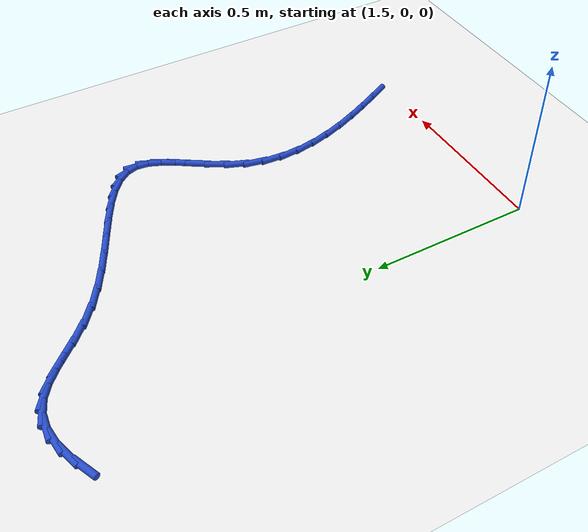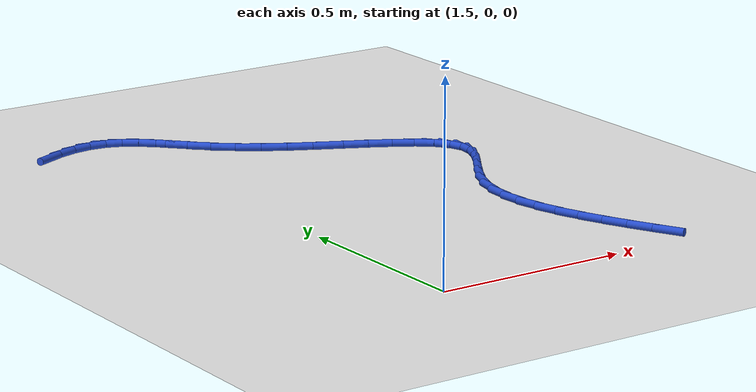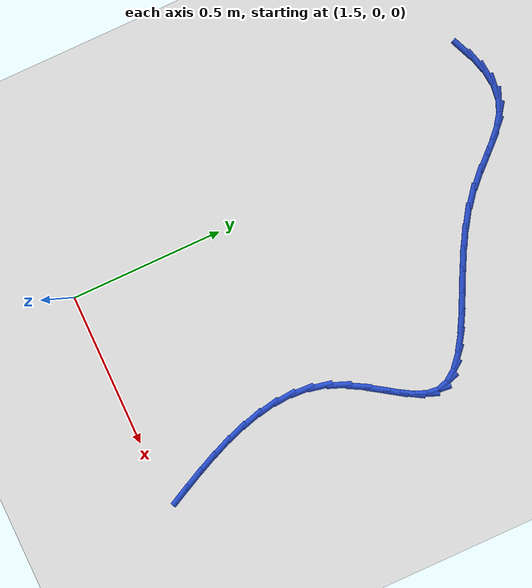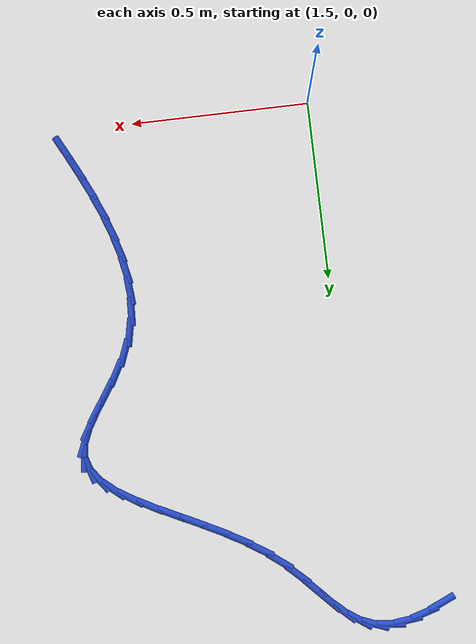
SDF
<sdf version="1.6">
 <world name="default">
  <model name="ground_plane">
   <static>1</static>
   <link name="link">
    <collision name="collision">
     <geometry><plane><normal>0 0 1</normal><size>100 100</size></plane></geometry>
     <surface><friction><ode><mu>100</mu><mu2>50</mu2></ode></friction></surface>
    </collision>
    <visual name="visual">
     <cast_shadows>0</cast_shadows>
     <geometry><plane><normal>0 0 1</normal><size>100 100</size></plane></geometry>
     <material>
      <script><uri>file://media/materials/scripts/gazebo.material</uri><name>Gazebo/WhiteGlow</name></script>
     </material>
    </visual>
   </link>
  </model>
  <model name="line">
   <link name="link_36">
    <pose>1.2952241328391052 1.4316886319928541 0.01 0 1.57 0.4160923968608848</pose>
    <collision name="collision">
     <geometry><cylinder><radius>0.01</radius><length>0.08</length></cylinder></geometry>
    </collision>
    <visual name="visual">
     <material>
      <script><name>Gazebo/Blue</name><uri>file://media/materials/scripts/gazebo.material</uri></script>
     </material>
     <geometry><cylinder><radius>0.01</radius><length>0.08</length></cylinder></geometry>
    </visual>
   </link>
   <link name="link_37">
    <pose>1.345287073493098 1.4538111351851817 0.01 0 1.57 0.28416590188307844</pose>
    <collision name="collision">
     <geometry><cylinder><radius>0.01</radius><length>0.08</length></cylinder></geometry>
    </collision>
    <visual name="visual">
     <material>
      <script><name>Gazebo/Blue</name><uri>file://media/materials/scripts/gazebo.material</uri></script>
     </material>
     <geometry><cylinder><radius>0.01</radius><length>0.08</length></cylinder></geometry>
    </visual>
   </link>
   <link name="link_38">
    <pose>1.3940921538069528 1.4680656414009376 0.01 0 1.57 0.11192194011019224</pose>
    <collision name="collision">
     <geometry><cylinder><radius>0.01</radius><length>0.08</length></cylinder></geometry>
    </collision>
    <visual name="visual">
     <material>
      <script><name>Gazebo/Blue</name><uri>file://media/materials/scripts/gazebo.material</uri></script>
     </material>
     <geometry><cylinder><radius>0.01</radius><length>0.08</length></cylinder></geometry>
    </visual>
   </link>
   <link name="link_39">
    <pose>1.441016465234059 1.473339540990185 0.01 0 1.57 -0.10807005241701684</pose>
    <collision name="collision">
     <geometry><cylinder><radius>0.01</radius><length>0.08</length></cylinder></geometry>
    </collision>
    <visual name="visual">
     <material>
      <script><name>Gazebo/Blue</name><uri>file://media/materials/scripts/gazebo.material</uri></script>
     </material>
     <geometry><cylinder><radius>0.01</radius><length>0.08</length></cylinder></geometry>
    </visual>
   </link>
   <link name="link_40">
    <pose>1.4854370992278052 1.4685202243029862 0.01 0 1.57 -0.3693830136698386</pose>
    <collision name="collision">
     <geometry><cylinder><radius>0.01</radius><length>0.08</length></cylinder></geometry>
    </collision>
    <visual name="visual">
     <material>
      <script><name>Gazebo/Blue</name><uri>file://media/materials/scripts/gazebo.material</uri></script>
     </material>
     <geometry><cylinder><radius>0.01</radius><length>0.08</length></cylinder></geometry>
    </visual>
   </link>
   <link name="link_41">
    <pose>1.526749942071172 1.4525258114870325 0.01 0 1.57 -0.6061341737355761</pose>
    <collision name="collision">
     <geometry><cylinder><radius>0.01</radius><length>0.08</length></cylinder></geometry>
    </collision>
    <visual name="visual">
     <material>
      <script><name>Gazebo/Blue</name><uri>file://media/materials/scripts/gazebo.material</uri></script>
     </material>
     <geometry><cylinder><radius>0.01</radius><length>0.08</length></cylinder></geometry>
    </visual>
   </link>
   <link name="link_42">
    <pose>1.565290306556728 1.4258103975913579 0.01 0 1.57 -0.7480756750388329</pose>
    <collision name="collision">
     <geometry><cylinder><radius>0.01</radius><length>0.08</length></cylinder></geometry>
    </collision>
    <visual name="visual">
     <material>
      <script><name>Gazebo/Blue</name><uri>file://media/materials/scripts/gazebo.material</uri></script>
     </material>
     <geometry><cylinder><radius>0.01</radius><length>0.08</length></cylinder></geometry>
    </visual>
   </link>
   <link name="link_43">
    <pose>1.602750592859781 1.3910469336771893 0.01 0 1.57 -0.8082615132169183</pose>
    <collision name="collision">
     <geometry><cylinder><radius>0.01</radius><length>0.08</length></cylinder></geometry>
    </collision>
    <visual name="visual">
     <material>
      <script><name>Gazebo/Blue</name><uri>file://media/materials/scripts/gazebo.material</uri></script>
     </material>
     <geometry><cylinder><radius>0.01</radius><length>0.08</length></cylinder></geometry>
    </visual>
   </link>
   <link name="link_44">
    <pose>1.6409290872005908 1.3510814959047266 0.01 0 1.57 -0.8049863453191419</pose>
    <collision name="collision">
     <geometry><cylinder><radius>0.01</radius><length>0.08</length></cylinder></geometry>
    </collision>
    <visual name="visual">
     <material>
      <script><name>Gazebo/Blue</name><uri>file://media/materials/scripts/gazebo.material</uri></script>
     </material>
     <geometry><cylinder><radius>0.01</radius><length>0.08</length></cylinder></geometry>
    </visual>
   </link>
   <link name="link_45">
    <pose>1.6816240757994185 1.3087601604341679 0.01 0 1.57 -0.748811799929745</pose>
    <collision name="collision">
     <geometry><cylinder><radius>0.01</radius><length>0.08</length></cylinder></geometry>
    </collision>
    <visual name="visual">
     <material>
      <script><name>Gazebo/Blue</name><uri>file://media/materials/scripts/gazebo.material</uri></script>
     </material>
     <geometry><cylinder><radius>0.01</radius><length>0.08</length></cylinder></geometry>
    </visual>
   </link>
   <link name="link_46">
    <pose>1.726633844876523 1.2669290034257132 0.01 0 1.57 -0.6507750913577891</pose>
    <collision name="collision">
     <geometry><cylinder><radius>0.01</radius><length>0.08</length></cylinder></geometry>
    </collision>
    <visual name="visual">
     <material>
      <script><name>Gazebo/Blue</name><uri>file://media/materials/scripts/gazebo.material</uri></script>
     </material>
     <geometry><cylinder><radius>0.01</radius><length>0.08</length></cylinder></geometry>
    </visual>
   </link>
   <link name="link_47">
    <pose>1.777501731184049 1.2281967630934876 0.01 0 1.57 -0.561263380317154</pose>
    <collision name="collision">
     <geometry><cylinder><radius>0.01</radius><length>0.08</length></cylinder></geometry>
    </collision>
    <visual name="visual">
     <material>
      <script><name>Gazebo/Blue</name><uri>file://media/materials/scripts/gazebo.material</uri></script>
     </material>
     <geometry><cylinder><radius>0.01</radius><length>0.08</length></cylinder></geometry>
    </visual>
   </link>
   <link name="link_48">
    <pose>1.8334564337074692 1.1930174315464142 0.01 0 1.57 -0.5008988691116714</pose>
    <collision name="collision">
     <geometry><cylinder><radius>0.01</radius><length>0.08</length></cylinder></geometry>
    </collision>
    <visual name="visual">
     <material>
      <script><name>Gazebo/Blue</name><uri>file://media/materials/scripts/gazebo.material</uri></script>
     </material>
     <geometry><cylinder><radius>0.01</radius><length>0.08</length></cylinder></geometry>
    </visual>
   </link>
   <link name="link_49">
    <pose>1.8924930694966617 1.1606966329243773 0.01 0 1.57 -0.4651940257753933</pose>
    <collision name="collision">
     <geometry><cylinder><radius>0.01</radius><length>0.08</length></cylinder></geometry>
    </collision>
    <visual name="visual">
     <material>
      <script><name>Gazebo/Blue</name><uri>file://media/materials/scripts/gazebo.material</uri></script>
     </material>
     <geometry><cylinder><radius>0.01</radius><length>0.08</length></cylinder></geometry>
    </visual>
   </link>
   <link name="link_50">
    <pose>1.9525952453586797 1.1305292762345291 0.01 0 1.57 -0.45199467438119767</pose>
    <collision name="collision">
     <geometry><cylinder><radius>0.01</radius><length>0.08</length></cylinder></geometry>
    </collision>
    <visual name="visual">
     <material>
      <script><name>Gazebo/Blue</name><uri>file://media/materials/scripts/gazebo.material</uri></script>
     </material>
     <geometry><cylinder><radius>0.01</radius><length>0.08</length></cylinder></geometry>
    </visual>
   </link>
   <link name="link_51">
    <pose>2.0117465681005764 1.1018102704840236 0.01 0 1.57 -0.4619903612679493</pose>
    <collision name="collision">
     <geometry><cylinder><radius>0.01</radius><length>0.08</length></cylinder></geometry>
    </collision>
    <visual name="visual">
     <material>
      <script><name>Gazebo/Blue</name><uri>file://media/materials/scripts/gazebo.material</uri></script>
     </material>
     <geometry><cylinder><radius>0.01</radius><length>0.08</length></cylinder></geometry>
    </visual>
   </link>
   <link name="link_52">
    <pose>2.0679306445294046 1.0738345246800127 0.01 0 1.57 -0.4994982258271587</pose>
    <collision name="collision">
     <geometry><cylinder><radius>0.01</radius><length>0.08</length></cylinder></geometry>
    </collision>
    <visual name="visual">
     <material>
      <script><name>Gazebo/Blue</name><uri>file://media/materials/scripts/gazebo.material</uri></script>
     </material>
     <geometry><cylinder><radius>0.01</radius><length>0.08</length></cylinder></geometry>
    </visual>
   </link>
   <link name="link_53">
    <pose>2.1191310814522186 1.0458969478296496 0.01 0 1.57 -0.5743724013302048</pose>
    <collision name="collision">
     <geometry><cylinder><radius>0.01</radius><length>0.08</length></cylinder></geometry>
    </collision>
    <visual name="visual">
     <material>
      <script><name>Gazebo/Blue</name><uri>file://media/materials/scripts/gazebo.material</uri></script>
     </material>
     <geometry><cylinder><radius>0.01</radius><length>0.08</length></cylinder></geometry>
    </visual>
   </link>
   <link name="link_54">
    <pose>2.163331485676073 1.0172924489400874 0.01 0 1.57 -0.7056501088922148</pose>
    <collision name="collision">
     <geometry><cylinder><radius>0.01</radius><length>0.08</length></cylinder></geometry>
    </collision>
    <visual name="visual">
     <material>
      <script><name>Gazebo/Blue</name><uri>file://media/materials/scripts/gazebo.material</uri></script>
     </material>
     <geometry><cylinder><radius>0.01</radius><length>0.08</length></cylinder></geometry>
    </visual>
   </link>
   <link name="link_55">
    <pose>2.1985154640080182 0.9873159370184784 0.01 0 1.57 -0.9250836618259491</pose>
    <collision name="collision">
     <geometry><cylinder><radius>0.01</radius><length>0.08</length></cylinder></geometry>
    </collision>
    <visual name="visual">
     <material>
      <script><name>Gazebo/Blue</name><uri>file://media/materials/scripts/gazebo.material</uri></script>
     </material>
     <geometry><cylinder><radius>0.01</radius><length>0.08</length></cylinder></geometry>
    </visual>
   </link>
   <link name="link_56">
    <pose>2.222666623255111 0.9552623210719762 0.01 0 1.57 -1.2622789611679384</pose>
    <collision name="collision">
     <geometry><cylinder><radius>0.01</radius><length>0.08</length></cylinder></geometry>
    </collision>
    <visual name="visual">
     <material>
      <script><name>Gazebo/Blue</name><uri>file://media/materials/scripts/gazebo.material</uri></script>
     </material>
     <geometry><cylinder><radius>0.01</radius><length>0.08</length></cylinder></geometry>
    </visual>
   </link>
   <link name="link_57">
    <pose>2.233768570224402 0.9204265101077328 0.01 0 1.57 1.4715385782287622</pose>
    <collision name="collision">
     <geometry><cylinder><radius>0.01</radius><length>0.08</length></cylinder></geometry>
    </collision>
    <visual name="visual">
     <material>
      <script><name>Gazebo/Blue</name><uri>file://media/materials/scripts/gazebo.material</uri></script>
     </material>
     <geometry><cylinder><radius>0.01</radius><length>0.08</length></cylinder></geometry>
    </visual>
   </link>
   <link name="link_58">
    <pose>2.229954576364178 0.8821276327210775 0.01 0 1.57 1.1761902208305475</pose>
    <collision name="collision">
     <geometry><cylinder><radius>0.01</radius><length>0.08</length></cylinder></geometry>
    </collision>
    <visual name="visual">
     <material>
      <script><name>Gazebo/Blue</name><uri>file://media/materials/scripts/gazebo.material</uri></script>
     </material>
     <geometry><cylinder><radius>0.01</radius><length>0.08</length></cylinder></geometry>
    </visual>
   </link>
   <link name="link_59">
    <pose>2.2124903897407915 0.8401917327883109 0.01 0 1.57 1.034947775338001</pose>
    <collision name="collision">
     <geometry><cylinder><radius>0.01</radius><length>0.08</length></cylinder></geometry>
    </collision>
    <visual name="visual">
     <material>
      <script><name>Gazebo/Blue</name><uri>file://media/materials/scripts/gazebo.material</uri></script>
     </material>
     <geometry><cylinder><radius>0.01</radius><length>0.08</length></cylinder></geometry>
    </visual>
   </link>
   <link name="link_60">
    <pose>2.18561121317138 0.7949253883358169 0.01 0 1.57 0.986228087763419</pose>
    <collision name="collision">
     <geometry><cylinder><radius>0.01</radius><length>0.08</length></cylinder></geometry>
    </collision>
    <visual name="visual">
     <material>
      <script><name>Gazebo/Blue</name><uri>file://media/materials/scripts/gazebo.material</uri></script>
     </material>
     <geometry><cylinder><radius>0.01</radius><length>0.08</length></cylinder></geometry>
    </visual>
   </link>
   <link name="link_61">
    <pose>2.1536692805429234 0.7466541160270029 0.01 0 1.57 1.000870492364637</pose>
    <collision name="collision">
     <geometry><cylinder><radius>0.01</radius><length>0.08</length></cylinder></geometry>
    </collision>
    <visual name="visual">
     <material>
      <script><name>Gazebo/Blue</name><uri>file://media/materials/scripts/gazebo.material</uri></script>
     </material>
     <geometry><cylinder><radius>0.01</radius><length>0.08</length></cylinder></geometry>
    </visual>
   </link>
   <link name="link_62">
    <pose>2.1210168257424034 0.6957034325252764 0.01 0 1.57 1.0723823776283112</pose>
    <collision name="collision">
     <geometry><cylinder><radius>0.01</radius><length>0.08</length></cylinder></geometry>
    </collision>
    <visual name="visual">
     <material>
      <script><name>Gazebo/Blue</name><uri>file://media/materials/scripts/gazebo.material</uri></script>
     </material>
     <geometry><cylinder><radius>0.01</radius><length>0.08</length></cylinder></geometry>
    </visual>
   </link>
   <link name="link_63">
    <pose>2.092006082656802 0.6423988544940459 0.01 0 1.57 1.2066799391715672</pose>
    <collision name="collision">
     <geometry><cylinder><radius>0.01</radius><length>0.08</length></cylinder></geometry>
    </collision>
    <visual name="visual">
     <material>
      <script><name>Gazebo/Blue</name><uri>file://media/materials/scripts/gazebo.material</uri></script>
     </material>
     <geometry><cylinder><radius>0.01</radius><length>0.08</length></cylinder></geometry>
    </visual>
   </link>
   <link name="link_64">
    <pose>2.070918149971676 0.5870658910696237 0.01 0 1.57 1.3762226947626577</pose>
    <collision name="collision">
     <geometry><cylinder><radius>0.01</radius><length>0.08</length></cylinder></geometry>
    </collision>
    <visual name="visual">
     <material>
      <script><name>Gazebo/Blue</name><uri>file://media/materials/scripts/gazebo.material</uri></script>
     </material>
     <geometry><cylinder><radius>0.01</radius><length>0.08</length></cylinder></geometry>
    </visual>
   </link>
   <link name="link_65">
    <pose>2.059678227997891 0.5300298021014986 0.01 0 1.57 1.531284122406158</pose>
    <collision name="collision">
     <geometry><cylinder><radius>0.01</radius><length>0.08</length></cylinder></geometry>
    </collision>
    <visual name="visual">
     <material>
      <script><name>Gazebo/Blue</name><uri>file://media/materials/scripts/gazebo.material</uri></script>
     </material>
     <geometry><cylinder><radius>0.01</radius><length>0.08</length></cylinder></geometry>
    </visual>
   </link>
   <link name="link_66">
    <pose>2.0573689501131995 0.47161554665603 0.01 0 1.57 -1.4779967476293356</pose>
    <collision name="collision">
     <geometry><cylinder><radius>0.01</radius><length>0.08</length></cylinder></geometry>
    </collision>
    <visual name="visual">
     <material>
      <script><name>Gazebo/Blue</name><uri>file://media/materials/scripts/gazebo.material</uri></script>
     </material>
     <geometry><cylinder><radius>0.01</radius><length>0.08</length></cylinder></geometry>
    </visual>
   </link>
   <link name="link_67">
    <pose>2.0629034035655254 0.41214806585923675 0.01 0 1.57 -1.3693768004964777</pose>
    <collision name="collision">
     <geometry><cylinder><radius>0.01</radius><length>0.08</length></cylinder></geometry>
    </collision>
    <visual name="visual">
     <material>
      <script><name>Gazebo/Blue</name><uri>file://media/materials/scripts/gazebo.material</uri></script>
     </material>
     <geometry><cylinder><radius>0.01</radius><length>0.08</length></cylinder></geometry>
    </visual>
   </link>
   <link name="link_68">
    <pose>2.075194675602793 0.3519523008371395 0.01 0 1.57 -1.2826515822460836</pose>
    <collision name="collision">
     <geometry><cylinder><radius>0.01</radius><length>0.08</length></cylinder></geometry>
    </collision>
    <visual name="visual">
     <material>
      <script><name>Gazebo/Blue</name><uri>file://media/materials/scripts/gazebo.material</uri></script>
     </material>
     <geometry><cylinder><radius>0.01</radius><length>0.08</length></cylinder></geometry>
    </visual>
   </link>
   <link name="link_69">
    <pose>2.093155853472928 0.2913531927157576 0.01 0 1.57 -1.2150618189729905</pose>
    <collision name="collision">
     <geometry><cylinder><radius>0.01</radius><length>0.08</length></cylinder></geometry>
    </collision>
    <visual name="visual">
     <material>
      <script><name>Gazebo/Blue</name><uri>file://media/materials/scripts/gazebo.material</uri></script>
     </material>
     <geometry><cylinder><radius>0.01</radius><length>0.08</length></cylinder></geometry>
    </visual>
   </link>
   <link name="link_70">
    <pose>2.1157000244238553 0.23067568262111057 0.01 0 1.57 -1.1639313400429612</pose>
    <collision name="collision">
     <geometry><cylinder><radius>0.01</radius><length>0.08</length></cylinder></geometry>
    </collision>
    <visual name="visual">
     <material>
      <script><name>Gazebo/Blue</name><uri>file://media/materials/scripts/gazebo.material</uri></script>
     </material>
     <geometry><cylinder><radius>0.01</radius><length>0.08</length></cylinder></geometry>
    </visual>
   </link>
   <link name="link_71">
    <pose>2.1417402757035 0.17024471167921768 0.01 0 1.57 -1.1271277349837023</pose>
    <collision name="collision">
     <geometry><cylinder><radius>0.01</radius><length>0.08</length></cylinder></geometry>
    </collision>
    <visual name="visual">
     <material>
      <script><name>Gazebo/Blue</name><uri>file://media/materials/scripts/gazebo.material</uri></script>
     </material>
     <geometry><cylinder><radius>0.01</radius><length>0.08</length></cylinder></geometry>
    </visual>
   </link>
   <link name="link_72">
    <pose>2.170189694559787 0.11038522101609939 0.01 0 1.57 -1.1032199181109676</pose>
    <collision name="collision">
     <geometry><cylinder><radius>0.01</radius><length>0.08</length></cylinder></geometry>
    </collision>
    <visual name="visual">
     <material>
      <script><name>Gazebo/Blue</name><uri>file://media/materials/scripts/gazebo.material</uri></script>
     </material>
     <geometry><cylinder><radius>0.01</radius><length>0.08</length></cylinder></geometry>
    </visual>
   </link>
   <link name="link_73">
    <pose>2.199961368240641 0.051422151757775134 0.01 0 1.57 -1.0915316077684647</pose>
    <collision name="collision">
     <geometry><cylinder><radius>0.01</radius><length>0.08</length></cylinder></geometry>
    </collision>
    <visual name="visual">
     <material>
      <script><name>Gazebo/Blue</name><uri>file://media/materials/scripts/gazebo.material</uri></script>
     </material>
     <geometry><cylinder><radius>0.01</radius><length>0.08</length></cylinder></geometry>
    </visual>
   </link>
  </model>
 </world>
</sdf>
